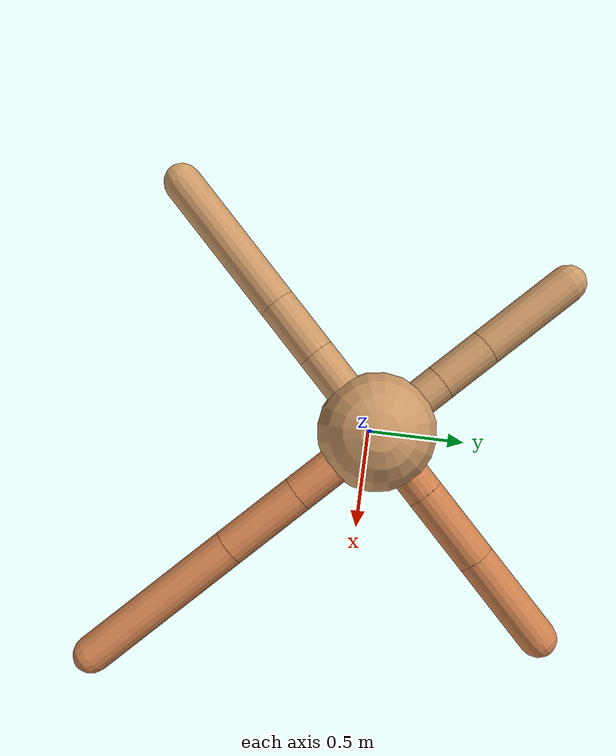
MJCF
<mujoco model="ant">
  <compiler angle="degree" coordinate="local" inertiafromgeom="true" />
  <option integrator="RK4" timestep="0.01" />
  <custom>
    <numeric data="0.0 0.0 0.55 1.0 0.0 0.0 0.0 0.0 1.0 0.0 -1.0 0.0 -1.0 0.0 1.0" name="init_qpos" />
  </custom>
  <default>
    <joint armature="1" damping="1" limited="true" />
    <geom conaffinity="0" condim="3" density="5.0" friction="1.5 0.1 0.1" margin="0.01" rgba="0.8 0.6 0.4 1" />
  </default>
  <worldbody>
    <body name="torso" pos="0 0 0.75">
      <geom name="torso_geom" pos="0 0 0" size="0.25" type="sphere" />

      <body name="front_left_leg" pos="0 0 0">
        <geom fromto="0.0 0.0 0.0 0.22924309383640012 0.22924309383640012 0.0" name="aux_1_geom" size="0.08" type="capsule" rgba=".8 .5 .3 1" />
        <body name="aux_1" pos="0.22924309383640012 0.22924309383640012 0.0">
          <joint axis="0 0 1" name="hip_1" pos="0.0 0.0 0.0" range="-40 40" type="hinge" />
          <geom fromto="0.0 0.0 0.0 0.24084337309095322 0.24084337309095322 0.0" name="left_leg_geom" size="0.08" type="capsule" rgba=".8 .5 .3 1" />
          <body pos="0.24084337309095322 0.24084337309095322 0.0" name="front_left_foot">
            <joint axis="-1 1 0" name="ankle_1" pos="0.0 0.0 0.0" range="30 100" type="hinge" />
            <geom fromto="0.0 0.0 0.0 0.295032123134014 0.295032123134014 0.0" name="left_ankle_geom" size="0.08" type="capsule" rgba=".8 .5 .3 1" />
          </body>
        </body>
      </body>
      <body name="front_right_leg" pos="0 0 0">
        <geom fromto="0.0 0.0 0.0 -0.23524589710130994 0.23524589710130994 0.0" name="aux_2_geom" size="0.08" type="capsule" />
        <body name="aux_2" pos="-0.23524589710130994 0.23524589710130994 0.0">
          <joint axis="0 0 1" name="hip_2" pos="0.0 0.0 0.0" range="-40 40" type="hinge" />
          <geom fromto="0.0 0.0 0.0 -0.16542431563200705 0.16542431563200705 0.0" name="right_leg_geom" size="0.08" type="capsule" />
          <body pos="-0.16542431563200705 0.16542431563200705 0.0" name="front_right_foot">
            <joint axis="1 1 0" name="ankle_2" pos="0.0 0.0 0.0" range="-100 -30" type="hinge" />
            <geom fromto="0.0 0.0 0.0 -0.3061728503610337 0.3061728503610337 0.0" name="right_ankle_geom" size="0.08" type="capsule" />
          </body>
        </body>
      </body>
      <body name="left_back_leg" pos="0 0 0">
        <geom fromto="0.0 0.0 0.0 -0.2910884419916255 -0.2910884419916255 0.0" name="aux_3_geom" size="0.08" type="capsule" />
        <body name="aux_3" pos="-0.2910884419916255 -0.2910884419916255 0.0">
          <joint axis="0 0 1" name="hip_3" pos="0.0 0.0 0.0" range="-40 40" type="hinge" />
          <geom fromto="0.0 0.0 0.0 -0.18513200400978347 -0.18513200400978347 0.0" name="back_leg_geom" size="0.08" type="capsule" />
          <body pos="-0.18513200400978347 -0.18513200400978347 0.0" name="left_back_foot">
            <joint axis="-1 1 0" name="ankle_3" pos="0.0 0.0 0.0" range="-100 -30" type="hinge" />
            <geom fromto="0.0 0.0 0.0 -0.4500546799129064 -0.4500546799129064 0.0" name="third_ankle_geom" size="0.08" type="capsule" />
          </body>
        </body>
      </body>
      <body name="right_back_leg" pos="0 0 0">
        <geom fromto="0.0 0.0 0.0 0.295405856454666 -0.295405856454666 0.0" name="aux_4_geom" size="0.08" type="capsule" rgba=".8 .5 .3 1" />
        <body name="aux_4" pos="0.295405856454666 -0.295405856454666 0.0">
          <joint axis="0 0 1" name="hip_4" pos="0.0 0.0 0.0" range="-40 40" type="hinge" />
          <geom fromto="0.0 0.0 0.0 0.2542913331602122 -0.2542913331602122 0.0" name="rightback_leg_geom" size="0.08" type="capsule" rgba=".8 .5 .3 1" />
          <body pos="0.2542913331602122 -0.2542913331602122 0.0" name="right_back_foot">
            <joint axis="1 1 0" name="ankle_4" pos="0.0 0.0 0.0" range="30 100" type="hinge" />
            <geom fromto="0.0 0.0 0.0 0.5075574796255017 -0.5075574796255017 0.0" name="fourth_ankle_geom" size="0.08" type="capsule" rgba=".8 .5 .3 1" />
          </body>
        </body>
      </body>
    </body>
  </worldbody>
  <actuator>
    <motor ctrllimited="true" ctrlrange="-1.0 1.0" joint="hip_4" gear="150" />
    <motor ctrllimited="true" ctrlrange="-1.0 1.0" joint="ankle_4" gear="150" />
    <motor ctrllimited="true" ctrlrange="-1.0 1.0" joint="hip_1" gear="150" />
    <motor ctrllimited="true" ctrlrange="-1.0 1.0" joint="ankle_1" gear="150" />
    <motor ctrllimited="true" ctrlrange="-1.0 1.0" joint="hip_2" gear="150" />
    <motor ctrllimited="true" ctrlrange="-1.0 1.0" joint="ankle_2" gear="150" />
    <motor ctrllimited="true" ctrlrange="-1.0 1.0" joint="hip_3" gear="150" />
    <motor ctrllimited="true" ctrlrange="-1.0 1.0" joint="ankle_3" gear="150" />
  </actuator>
</mujoco>
